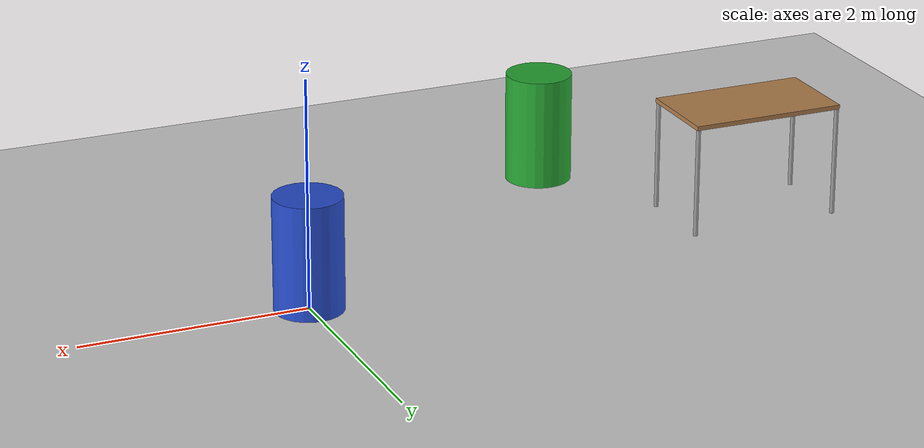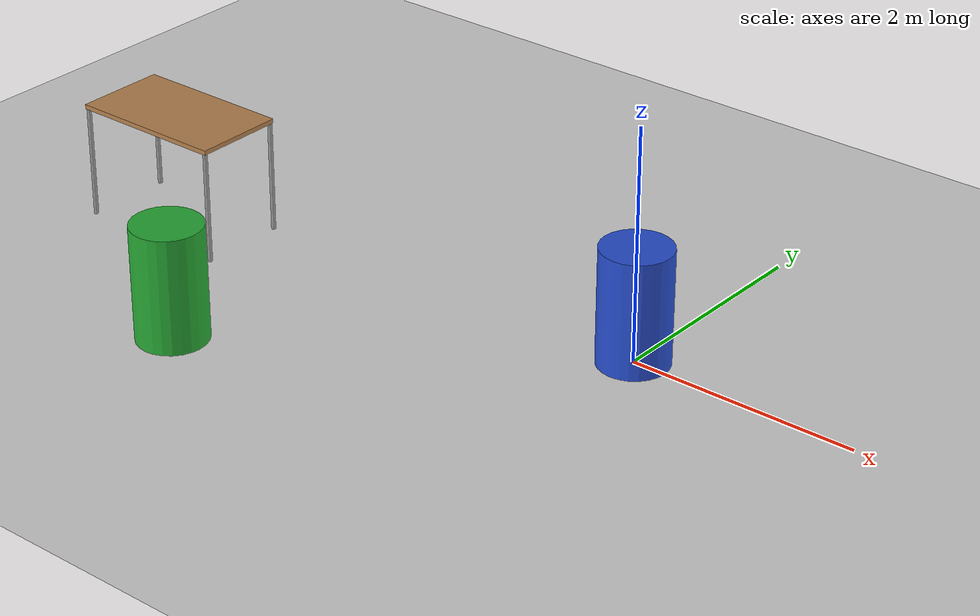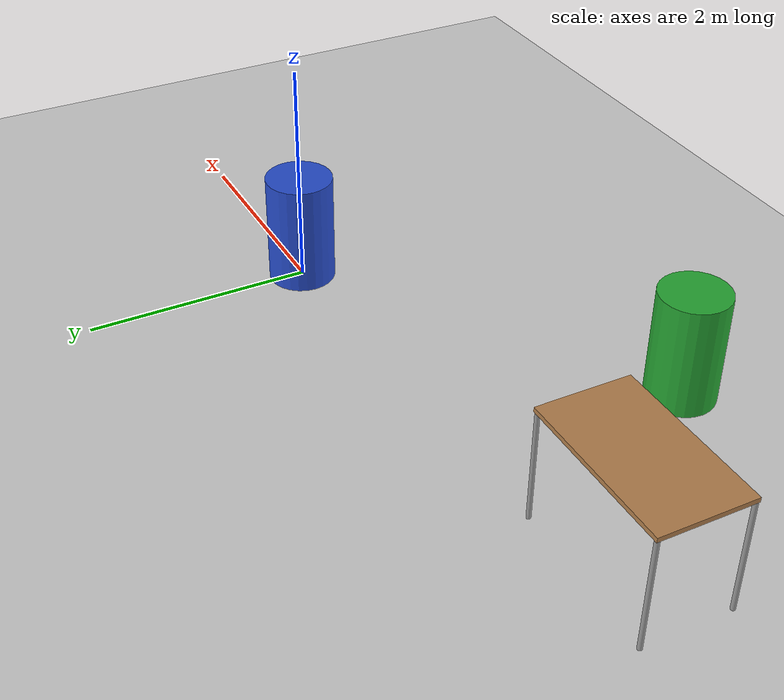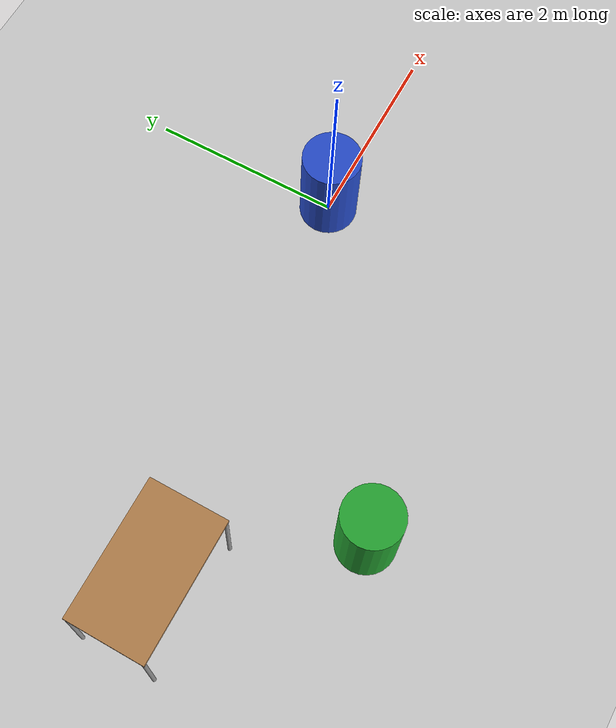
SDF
<sdf version="1.6">
 <world name="default">
  <model name="ground_plane">
   <static>1</static>
   <link name="link">
    <collision name="collision">
     <geometry><plane><normal>0 0 1</normal><size>100 100</size></plane></geometry>
     <surface><friction><ode><mu>100</mu><mu2>50</mu2></ode></friction></surface>
    </collision>
    <visual name="visual">
     <cast_shadows>0</cast_shadows>
     <geometry><plane><normal>0 0 1</normal><size>100 100</size></plane></geometry>
     <material>
      <script><uri>file://media/materials/scripts/gazebo.material</uri><name>Gazebo/Grey</name></script>
     </material>
    </visual>
   </link>
  </model>
  <model name="table">
   <static>0</static>
   <link name="link">
    <collision name="surface">
     <pose>0 0 1 0 -0 0</pose>
     <geometry><box><size>1.5 0.8 0.03</size></box></geometry>
     <surface><friction><ode><mu>0.6</mu><mu2>0.6</mu2></ode></friction></surface>
    </collision>
    <visual name="visual1">
     <pose>0 0 1 0 -0 0</pose>
     <geometry><box><size>1.4 0.8 0.04</size></box></geometry>
     <material>
      <script><uri>file://media/materials/scripts/gazebo.material</uri><name>Gazebo/Wood</name></script>
     </material>
    </visual>
    <collision name="front_left_leg">
     <pose>0.68 0.38 0.5 0 -0 0</pose>
     <geometry><cylinder><radius>0.02</radius><length>1</length></cylinder></geometry>
    </collision>
    <visual name="front_left_leg">
     <pose>0.68 0.38 0.5 0 -0 0</pose>
     <geometry><cylinder><radius>0.02</radius><length>1</length></cylinder></geometry>
     <material>
      <script><uri>file://media/materials/scripts/gazebo.material</uri><name>Gazebo/Grey</name></script>
     </material>
    </visual>
    <collision name="front_right_leg">
     <pose>0.68 -0.38 0.5 0 -0 0</pose>
     <geometry><cylinder><radius>0.02</radius><length>1</length></cylinder></geometry>
    </collision>
    <visual name="front_right_leg">
     <pose>0.68 -0.38 0.5 0 -0 0</pose>
     <geometry><cylinder><radius>0.02</radius><length>1</length></cylinder></geometry>
     <material>
      <script><uri>file://media/materials/scripts/gazebo.material</uri><name>Gazebo/Grey</name></script>
     </material>
    </visual>
    <collision name="back_right_leg">
     <pose>-0.68 -0.38 0.5 0 -0 0</pose>
     <geometry><cylinder><radius>0.02</radius><length>1</length></cylinder></geometry>
    </collision>
    <visual name="back_right_leg">
     <pose>-0.68 -0.38 0.5 0 -0 0</pose>
     <geometry><cylinder><radius>0.02</radius><length>1</length></cylinder></geometry>
     <material>
      <script><uri>file://media/materials/scripts/gazebo.material</uri><name>Gazebo/Grey</name></script>
     </material>
    </visual>
    <collision name="back_left_leg">
     <pose>-0.68 0.38 0.5 0 -0 0</pose>
     <geometry><cylinder><radius>0.02</radius><length>1</length></cylinder></geometry>
    </collision>
    <visual name="back_left_leg">
     <pose>-0.68 0.38 0.5 0 -0 0</pose>
     <geometry><cylinder><radius>0.02</radius><length>1</length></cylinder></geometry>
     <material>
      <script><uri>file://media/materials/scripts/gazebo.material</uri><name>Gazebo/Grey</name></script>
     </material>
    </visual>
    <inertial>
     <inertia><ixx>1</ixx><ixy>0</ixy><ixz>0</ixz><iyy>1</iyy><iyz>0</iyz><izz>1</izz></inertia>
     <mass>1</mass>
    </inertial>
   </link>
   <pose>-4.34248 -0.532954 -9e-06 1e-06 -1e-06 0</pose>
  </model>
  <model name="dynamic_obstacle_2">
   <pose>-3.0 -2.0 0.5 0 0 0</pose>
   <link name="link">
    <inertial>
     <mass>1.0</mass>
     <inertia><ixx>0.1</ixx><ixy>0</ixy><ixz>0</ixz><iyy>0.1</iyy><iyz>0</iyz><izz>0.1</izz></inertia>
    </inertial>
    <collision name="collision">
     <geometry><cylinder><radius>0.3</radius><length>1.0</length></cylinder></geometry>
    </collision>
    <visual name="visual">
     <geometry><cylinder><radius>0.3</radius><length>1.0</length></cylinder></geometry>
     <material>
      <script><uri>file://media/materials/scripts/gazebo.material</uri><name>Gazebo/Green</name></script>
     </material>
    </visual>
   </link>
  </model>
  <model name="dynamic_obstacle_3">
   <pose>0.0 0.0 0.5 0 0 0</pose>
   <link name="link">
    <inertial>
     <mass>1.0</mass>
     <inertia><ixx>0.1</ixx><ixy>0</ixy><ixz>0</ixz><iyy>0.1</iyy><iyz>0</iyz><izz>0.1</izz></inertia>
    </inertial>
    <collision name="collision">
     <geometry><cylinder><radius>0.3</radius><length>1.0</length></cylinder></geometry>
    </collision>
    <visual name="visual">
     <geometry><cylinder><radius>0.3</radius><length>1.0</length></cylinder></geometry>
     <material>
      <script><uri>file://media/materials/scripts/gazebo.material</uri><name>Gazebo/Blue</name></script>
     </material>
    </visual>
   </link>
  </model>
 </world>
</sdf>
